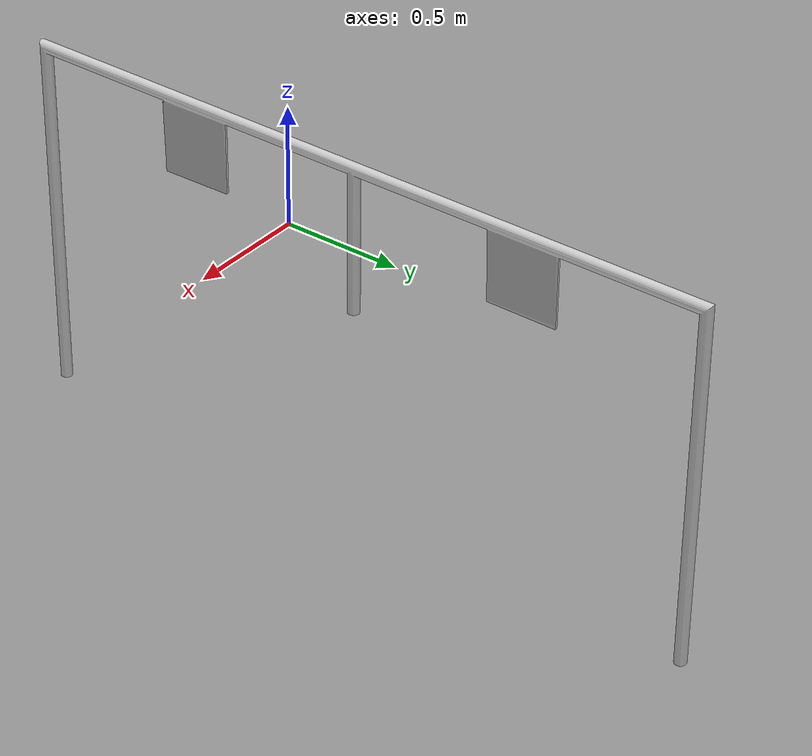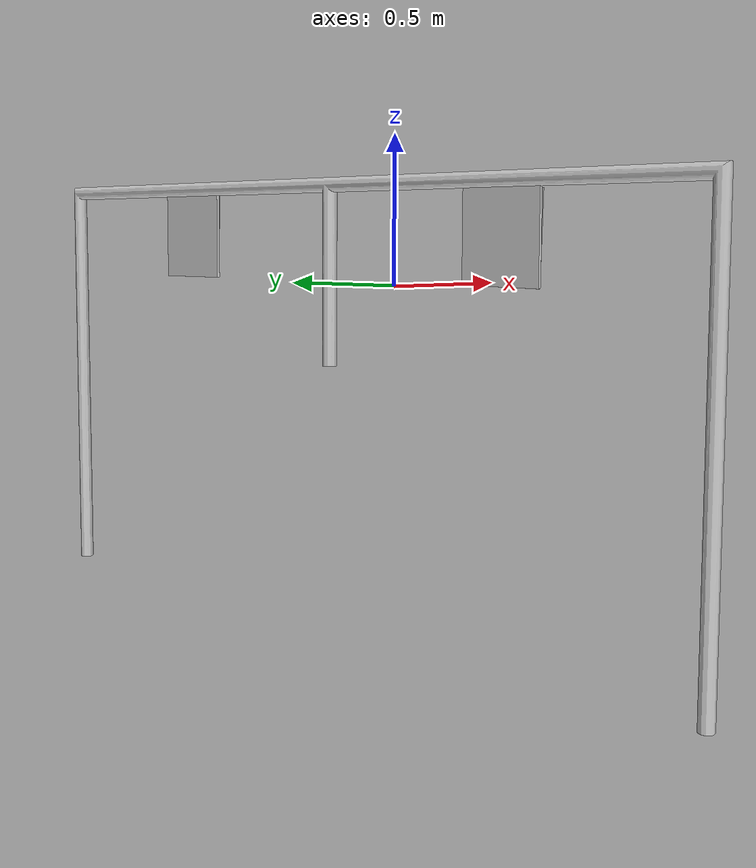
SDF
<sdf version='1.9'>
  <model name='rs2026_gate'>
    <static>true</static>
    <link name='base_link'>
      <inertial>
        <pose>8.6159e-05 2.2529e-06 -0.26534 0 0 0</pose>
        <mass>15.543</mass>
        <inertia>
          <ixx>3.2566</ixx>
          <ixy>-1.1467e-05</ixy>
          <ixz>-0.00030835</ixz>
          <iyy>23.727</iyy>
          <iyz>2.6926e-06</iyz>
          <izz>20.475</izz>
        </inertia>
      </inertial>
      <collision name='base_link_collision'>
        <pose>0 0 0 0 0 0</pose>
        <geometry>
          <mesh>
            <scale>1 1 1</scale>
            <uri>model://rs2026_gate/meshes/base_link.dae</uri>
          </mesh>
        </geometry>
      </collision>
      <visual name='base_link_visual'>
        <pose>0 0 0 0 0 0</pose>
        <geometry>
          <mesh>
            <scale>1 1 1</scale>
            <uri>model://rs2026_gate/meshes/base_link.dae</uri>
          </mesh>
        </geometry>
      </visual>

      <sensor name='gate_contact_sensor' type='contact'>
        <update_rate>30.0</update_rate>
        <always_on>true</always_on>
        <contact>
          <collision>base_link_collision</collision>
        </contact>
      </sensor>

    </link>
  </model>
</sdf>
